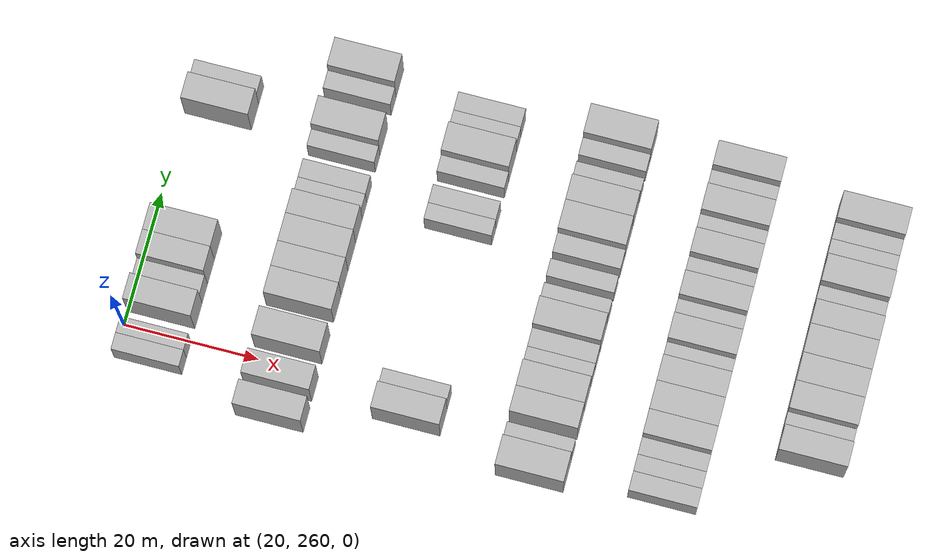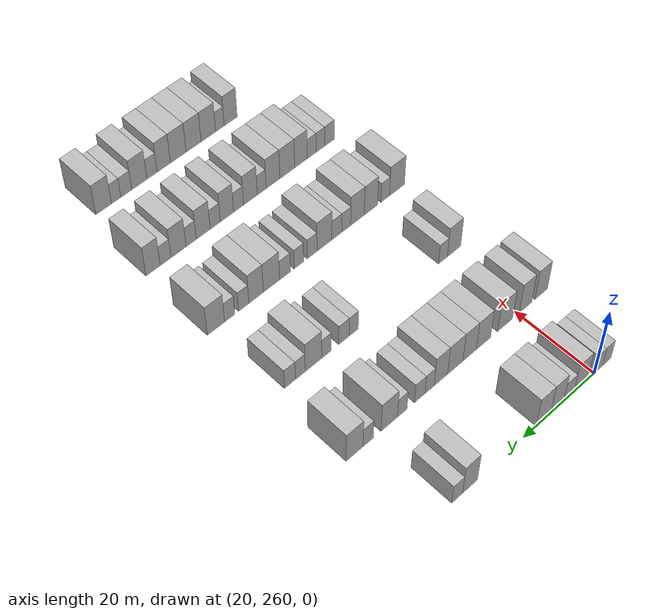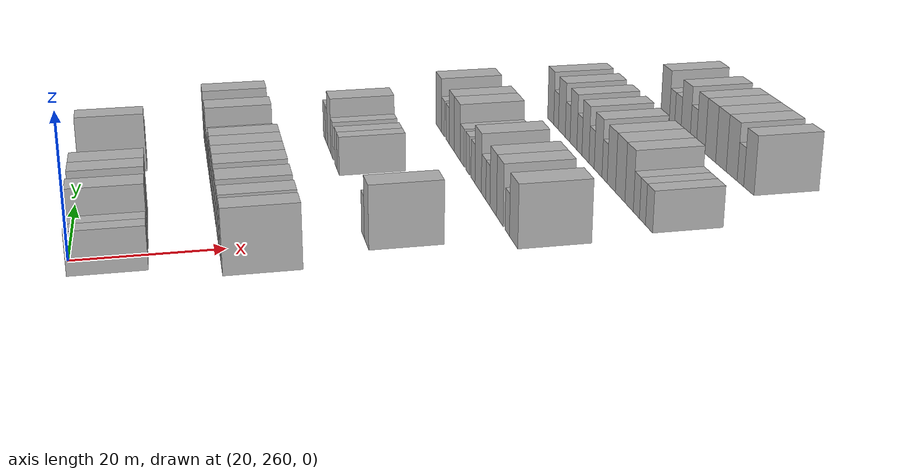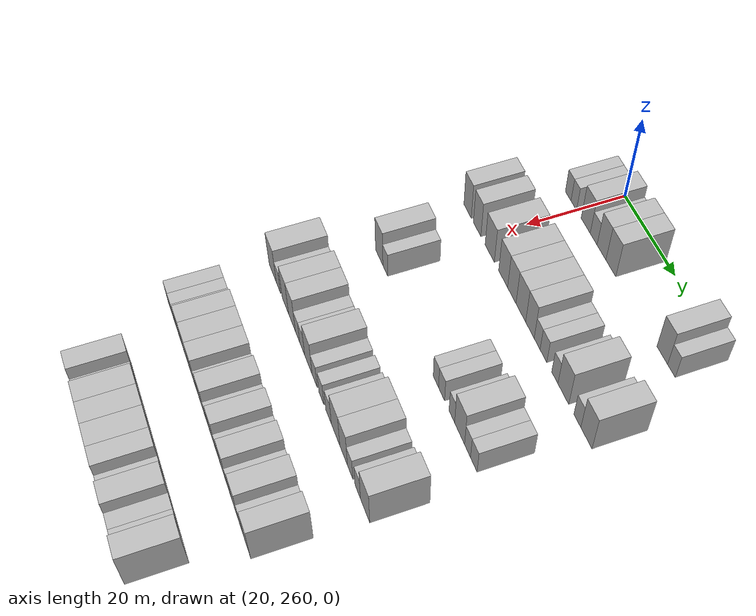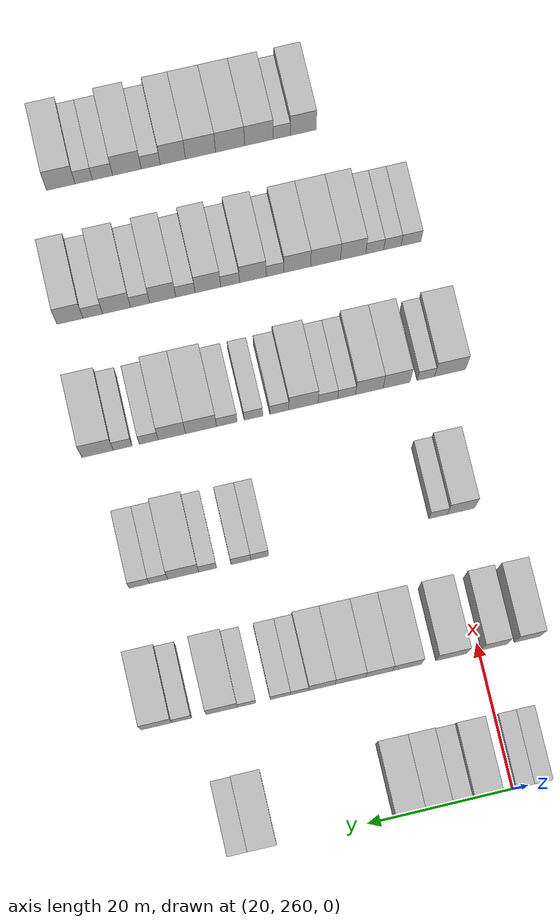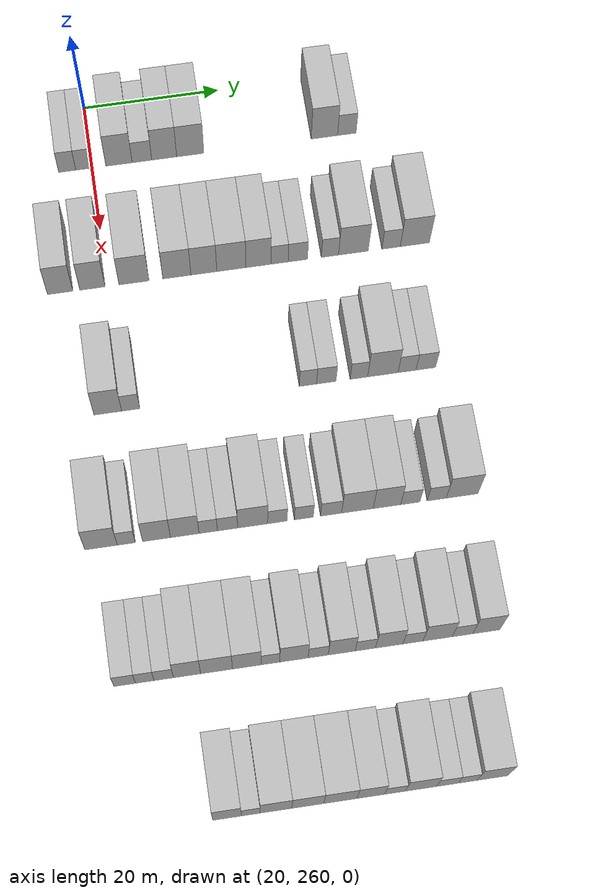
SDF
<sdf version="1.6">
 <world name="default">
  <model name="building_160">
   <static>1</static>
   <pose>25.0000 256.3581 0 0.000000 0.000000 0.000000</pose>
   <link name="link">
    <pose>0 0 3.00 0 0 0</pose>
    <collision name="collision"><geometry><box><size>10.0000 2.5016 6.0000</size></box></geometry></collision>
    <visual name="visual">
     <cast_shadows>0</cast_shadows>
     <geometry><box><size>10.0000 2.5016 6.0000</size></box></geometry>
     <material>
      <script>
       <uri>model://HANNAS_wall/materials/scripts</uri>
       <uri>model://HANNAS_wall/materials/textures</uri>
       <name>vrc/HANNAS_wall</name>
      </script>
     </material>
    </visual>
   </link>
  </model>
  <model name="building_161">
   <static>1</static>
   <pose>25.0000 258.8253 0 0.000000 0.000000 0.000000</pose>
   <link name="link">
    <pose>0 0 3.00 0 0 0</pose>
    <collision name="collision"><geometry><box><size>10.0000 2.4328 6.0000</size></box></geometry></collision>
    <visual name="visual">
     <cast_shadows>0</cast_shadows>
     <geometry><box><size>10.0000 2.4328 6.0000</size></box></geometry>
     <material>
      <script>
       <uri>model://HANNAS_wall/materials/scripts</uri>
       <uri>model://HANNAS_wall/materials/textures</uri>
       <name>vrc/HANNAS_wall</name>
      </script>
     </material>
    </visual>
   </link>
  </model>
  <model name="building_162">
   <static>1</static>
   <pose>25.0000 263.9717 0 0.000000 0.000000 0.000000</pose>
   <link name="link">
    <pose>0 0 4.50 0 0 0</pose>
    <collision name="collision"><geometry><box><size>10.0000 3.8600 9.0000</size></box></geometry></collision>
    <visual name="visual">
     <cast_shadows>0</cast_shadows>
     <geometry><box><size>10.0000 3.8600 9.0000</size></box></geometry>
     <material>
      <script>
       <uri>model://HANNAS_wall/materials/scripts</uri>
       <uri>model://HANNAS_wall/materials/textures</uri>
       <name>vrc/HANNAS_wall</name>
      </script>
     </material>
    </visual>
   </link>
  </model>
  <model name="building_163">
   <static>1</static>
   <pose>25.0000 267.3473 0 0.000000 0.000000 0.000000</pose>
   <link name="link">
    <pose>0 0 3.00 0 0 0</pose>
    <collision name="collision"><geometry><box><size>10.0000 2.8911 6.0000</size></box></geometry></collision>
    <visual name="visual">
     <cast_shadows>0</cast_shadows>
     <geometry><box><size>10.0000 2.8911 6.0000</size></box></geometry>
     <material>
      <script>
       <uri>model://HANNAS_wall/materials/scripts</uri>
       <uri>model://HANNAS_wall/materials/textures</uri>
       <name>vrc/HANNAS_wall</name>
      </script>
     </material>
    </visual>
   </link>
  </model>
  <model name="building_164">
   <static>1</static>
   <pose>25.0000 270.6294 0 0.000000 0.000000 0.000000</pose>
   <link name="link">
    <pose>0 0 4.50 0 0 0</pose>
    <collision name="collision"><geometry><box><size>10.0000 3.6730 9.0000</size></box></geometry></collision>
    <visual name="visual">
     <cast_shadows>0</cast_shadows>
     <geometry><box><size>10.0000 3.6730 9.0000</size></box></geometry>
     <material>
      <script>
       <uri>model://HANNAS_wall/materials/scripts</uri>
       <uri>model://HANNAS_wall/materials/textures</uri>
       <name>vrc/HANNAS_wall</name>
      </script>
     </material>
    </visual>
   </link>
  </model>
  <model name="building_165">
   <static>1</static>
   <pose>25.0000 274.4735 0 0.000000 0.000000 0.000000</pose>
   <link name="link">
    <pose>0 0 4.50 0 0 0</pose>
    <collision name="collision"><geometry><box><size>10.0000 4.0152 9.0000</size></box></geometry></collision>
    <visual name="visual">
     <cast_shadows>0</cast_shadows>
     <geometry><box><size>10.0000 4.0152 9.0000</size></box></geometry>
     <material>
      <script>
       <uri>model://HANNAS_wall/materials/scripts</uri>
       <uri>model://HANNAS_wall/materials/textures</uri>
       <name>vrc/HANNAS_wall</name>
      </script>
     </material>
    </visual>
   </link>
  </model>
  <model name="building_166">
   <static>1</static>
   <pose>25.0000 294.3667 0 0.000000 0.000000 0.000000</pose>
   <link name="link">
    <pose>0 0 4.50 0 0 0</pose>
    <collision name="collision"><geometry><box><size>10.0000 3.9238 9.0000</size></box></geometry></collision>
    <visual name="visual">
     <cast_shadows>0</cast_shadows>
     <geometry><box><size>10.0000 3.9238 9.0000</size></box></geometry>
     <material>
      <script>
       <uri>model://HANNAS_wall/materials/scripts</uri>
       <uri>model://HANNAS_wall/materials/textures</uri>
       <name>vrc/HANNAS_wall</name>
      </script>
     </material>
    </visual>
   </link>
  </model>
  <model name="building_167">
   <static>1</static>
   <pose>25.0000 297.7089 0 0.000000 0.000000 0.000000</pose>
   <link name="link">
    <pose>0 0 3.00 0 0 0</pose>
    <collision name="collision"><geometry><box><size>10.0000 2.7605 6.0000</size></box></geometry></collision>
    <visual name="visual">
     <cast_shadows>0</cast_shadows>
     <geometry><box><size>10.0000 2.7605 6.0000</size></box></geometry>
     <material>
      <script>
       <uri>model://HANNAS_wall/materials/scripts</uri>
       <uri>model://HANNAS_wall/materials/textures</uri>
       <name>vrc/HANNAS_wall</name>
      </script>
     </material>
    </visual>
   </link>
  </model>
  <model name="building_325">
   <static>1</static>
   <pose>44.0000 253.2449 0 0.000000 0.000000 0.000000</pose>
   <link name="link">
    <pose>0 0 4.50 0 0 0</pose>
    <collision name="collision"><geometry><box><size>10.0000 3.6334 9.0000</size></box></geometry></collision>
    <visual name="visual">
     <cast_shadows>0</cast_shadows>
     <geometry><box><size>10.0000 3.6334 9.0000</size></box></geometry>
     <material>
      <script>
       <uri>model://HANNAS_wall/materials/scripts</uri>
       <uri>model://HANNAS_wall/materials/textures</uri>
       <name>vrc/HANNAS_wall</name>
      </script>
     </material>
    </visual>
   </link>
  </model>
  <model name="building_326">
   <static>1</static>
   <pose>44.0000 257.8719 0 0.000000 0.000000 0.000000</pose>
   <link name="link">
    <pose>0 0 4.50 0 0 0</pose>
    <collision name="collision"><geometry><box><size>10.0000 3.6205 9.0000</size></box></geometry></collision>
    <visual name="visual">
     <cast_shadows>0</cast_shadows>
     <geometry><box><size>10.0000 3.6205 9.0000</size></box></geometry>
     <material>
      <script>
       <uri>model://HANNAS_wall/materials/scripts</uri>
       <uri>model://HANNAS_wall/materials/textures</uri>
       <name>vrc/HANNAS_wall</name>
      </script>
     </material>
    </visual>
   </link>
  </model>
  <model name="building_327">
   <static>1</static>
   <pose>44.0000 263.8286 0 0.000000 0.000000 0.000000</pose>
   <link name="link">
    <pose>0 0 4.50 0 0 0</pose>
    <collision name="collision"><geometry><box><size>10.0000 4.2930 9.0000</size></box></geometry></collision>
    <visual name="visual">
     <cast_shadows>0</cast_shadows>
     <geometry><box><size>10.0000 4.2930 9.0000</size></box></geometry>
     <material>
      <script>
       <uri>model://HANNAS_wall/materials/scripts</uri>
       <uri>model://HANNAS_wall/materials/textures</uri>
       <name>vrc/HANNAS_wall</name>
      </script>
     </material>
    </visual>
   </link>
  </model>
  <model name="building_328">
   <static>1</static>
   <pose>44.0000 269.9940 0 0.000000 0.000000 0.000000</pose>
   <link name="link">
    <pose>0 0 4.50 0 0 0</pose>
    <collision name="collision"><geometry><box><size>10.0000 4.0378 9.0000</size></box></geometry></collision>
    <visual name="visual">
     <cast_shadows>0</cast_shadows>
     <geometry><box><size>10.0000 4.0378 9.0000</size></box></geometry>
     <material>
      <script>
       <uri>model://HANNAS_wall/materials/scripts</uri>
       <uri>model://HANNAS_wall/materials/textures</uri>
       <name>vrc/HANNAS_wall</name>
      </script>
     </material>
    </visual>
   </link>
  </model>
  <model name="building_329">
   <static>1</static>
   <pose>44.0000 273.8795 0 0.000000 0.000000 0.000000</pose>
   <link name="link">
    <pose>0 0 4.50 0 0 0</pose>
    <collision name="collision"><geometry><box><size>10.0000 3.7334 9.0000</size></box></geometry></collision>
    <visual name="visual">
     <cast_shadows>0</cast_shadows>
     <geometry><box><size>10.0000 3.7334 9.0000</size></box></geometry>
     <material>
      <script>
       <uri>model://HANNAS_wall/materials/scripts</uri>
       <uri>model://HANNAS_wall/materials/textures</uri>
       <name>vrc/HANNAS_wall</name>
      </script>
     </material>
    </visual>
   </link>
  </model>
  <model name="building_330">
   <static>1</static>
   <pose>44.0000 277.8485 0 0.000000 0.000000 0.000000</pose>
   <link name="link">
    <pose>0 0 4.50 0 0 0</pose>
    <collision name="collision"><geometry><box><size>10.0000 4.2046 9.0000</size></box></geometry></collision>
    <visual name="visual">
     <cast_shadows>0</cast_shadows>
     <geometry><box><size>10.0000 4.2046 9.0000</size></box></geometry>
     <material>
      <script>
       <uri>model://HANNAS_wall/materials/scripts</uri>
       <uri>model://HANNAS_wall/materials/textures</uri>
       <name>vrc/HANNAS_wall</name>
      </script>
     </material>
    </visual>
   </link>
  </model>
  <model name="building_331">
   <static>1</static>
   <pose>44.0000 281.7733 0 0.000000 0.000000 0.000000</pose>
   <link name="link">
    <pose>0 0 4.50 0 0 0</pose>
    <collision name="collision"><geometry><box><size>10.0000 3.6450 9.0000</size></box></geometry></collision>
    <visual name="visual">
     <cast_shadows>0</cast_shadows>
     <geometry><box><size>10.0000 3.6450 9.0000</size></box></geometry>
     <material>
      <script>
       <uri>model://HANNAS_wall/materials/scripts</uri>
       <uri>model://HANNAS_wall/materials/textures</uri>
       <name>vrc/HANNAS_wall</name>
      </script>
     </material>
    </visual>
   </link>
  </model>
  <model name="building_332">
   <static>1</static>
   <pose>44.0000 284.8327 0 0.000000 0.000000 0.000000</pose>
   <link name="link">
    <pose>0 0 3.00 0 0 0</pose>
    <collision name="collision"><geometry><box><size>10.0000 2.4738 6.0000</size></box></geometry></collision>
    <visual name="visual">
     <cast_shadows>0</cast_shadows>
     <geometry><box><size>10.0000 2.4738 6.0000</size></box></geometry>
     <material>
      <script>
       <uri>model://HANNAS_wall/materials/scripts</uri>
       <uri>model://HANNAS_wall/materials/textures</uri>
       <name>vrc/HANNAS_wall</name>
      </script>
     </material>
    </visual>
   </link>
  </model>
  <model name="building_333">
   <static>1</static>
   <pose>44.0000 287.4721 0 0.000000 0.000000 0.000000</pose>
   <link name="link">
    <pose>0 0 3.00 0 0 0</pose>
    <collision name="collision"><geometry><box><size>10.0000 2.8050 6.0000</size></box></geometry></collision>
    <visual name="visual">
     <cast_shadows>0</cast_shadows>
     <geometry><box><size>10.0000 2.8050 6.0000</size></box></geometry>
     <material>
      <script>
       <uri>model://HANNAS_wall/materials/scripts</uri>
       <uri>model://HANNAS_wall/materials/textures</uri>
       <name>vrc/HANNAS_wall</name>
      </script>
     </material>
    </visual>
   </link>
  </model>
  <model name="building_334">
   <static>1</static>
   <pose>44.0000 292.1279 0 0.000000 0.000000 0.000000</pose>
   <link name="link">
    <pose>0 0 3.00 0 0 0</pose>
    <collision name="collision"><geometry><box><size>10.0000 2.5068 6.0000</size></box></geometry></collision>
    <visual name="visual">
     <cast_shadows>0</cast_shadows>
     <geometry><box><size>10.0000 2.5068 6.0000</size></box></geometry>
     <material>
      <script>
       <uri>model://HANNAS_wall/materials/scripts</uri>
       <uri>model://HANNAS_wall/materials/textures</uri>
       <name>vrc/HANNAS_wall</name>
      </script>
     </material>
    </visual>
   </link>
  </model>
  <model name="building_335">
   <static>1</static>
   <pose>44.0000 295.5361 0 0.000000 0.000000 0.000000</pose>
   <link name="link">
    <pose>0 0 4.50 0 0 0</pose>
    <collision name="collision"><geometry><box><size>10.0000 4.3096 9.0000</size></box></geometry></collision>
    <visual name="visual">
     <cast_shadows>0</cast_shadows>
     <geometry><box><size>10.0000 4.3096 9.0000</size></box></geometry>
     <material>
      <script>
       <uri>model://HANNAS_wall/materials/scripts</uri>
       <uri>model://HANNAS_wall/materials/textures</uri>
       <name>vrc/HANNAS_wall</name>
      </script>
     </material>
    </visual>
   </link>
  </model>
  <model name="building_336">
   <static>1</static>
   <pose>44.0000 301.0274 0 0.000000 0.000000 0.000000</pose>
   <link name="link">
    <pose>0 0 3.00 0 0 0</pose>
    <collision name="collision"><geometry><box><size>10.0000 2.6730 6.0000</size></box></geometry></collision>
    <visual name="visual">
     <cast_shadows>0</cast_shadows>
     <geometry><box><size>10.0000 2.6730 6.0000</size></box></geometry>
     <material>
      <script>
       <uri>model://HANNAS_wall/materials/scripts</uri>
       <uri>model://HANNAS_wall/materials/textures</uri>
       <name>vrc/HANNAS_wall</name>
      </script>
     </material>
    </visual>
   </link>
  </model>
  <model name="building_337">
   <static>1</static>
   <pose>44.0000 304.4922 0 0.000000 0.000000 0.000000</pose>
   <link name="link">
    <pose>0 0 4.50 0 0 0</pose>
    <collision name="collision"><geometry><box><size>10.0000 4.2565 9.0000</size></box></geometry></collision>
    <visual name="visual">
     <cast_shadows>0</cast_shadows>
     <geometry><box><size>10.0000 4.2565 9.0000</size></box></geometry>
     <material>
      <script>
       <uri>model://HANNAS_wall/materials/scripts</uri>
       <uri>model://HANNAS_wall/materials/textures</uri>
       <name>vrc/HANNAS_wall</name>
      </script>
     </material>
    </visual>
   </link>
  </model>
  <model name="building_499">
   <static>1</static>
   <pose>63.0000 257.8078 0 0.000000 0.000000 0.000000</pose>
   <link name="link">
    <pose>0 0 4.50 0 0 0</pose>
    <collision name="collision"><geometry><box><size>10.0000 3.8708 9.0000</size></box></geometry></collision>
    <visual name="visual">
     <cast_shadows>0</cast_shadows>
     <geometry><box><size>10.0000 3.8708 9.0000</size></box></geometry>
     <material>
      <script>
       <uri>model://HANNAS_wall/materials/scripts</uri>
       <uri>model://HANNAS_wall/materials/textures</uri>
       <name>vrc/HANNAS_wall</name>
      </script>
     </material>
    </visual>
   </link>
  </model>
  <model name="building_500">
   <static>1</static>
   <pose>63.0000 261.0127 0 0.000000 0.000000 0.000000</pose>
   <link name="link">
    <pose>0 0 3.00 0 0 0</pose>
    <collision name="collision"><geometry><box><size>10.0000 2.5390 6.0000</size></box></geometry></collision>
    <visual name="visual">
     <cast_shadows>0</cast_shadows>
     <geometry><box><size>10.0000 2.5390 6.0000</size></box></geometry>
     <material>
      <script>
       <uri>model://HANNAS_wall/materials/scripts</uri>
       <uri>model://HANNAS_wall/materials/textures</uri>
       <name>vrc/HANNAS_wall</name>
      </script>
     </material>
    </visual>
   </link>
  </model>
  <model name="building_501">
   <static>1</static>
   <pose>63.0000 285.9503 0 0.000000 0.000000 0.000000</pose>
   <link name="link">
    <pose>0 0 3.00 0 0 0</pose>
    <collision name="collision"><geometry><box><size>10.0000 2.4454 6.0000</size></box></geometry></collision>
    <visual name="visual">
     <cast_shadows>0</cast_shadows>
     <geometry><box><size>10.0000 2.4454 6.0000</size></box></geometry>
     <material>
      <script>
       <uri>model://HANNAS_wall/materials/scripts</uri>
       <uri>model://HANNAS_wall/materials/textures</uri>
       <name>vrc/HANNAS_wall</name>
      </script>
     </material>
    </visual>
   </link>
  </model>
  <model name="building_502">
   <static>1</static>
   <pose>63.0000 288.5476 0 0.000000 0.000000 0.000000</pose>
   <link name="link">
    <pose>0 0 3.00 0 0 0</pose>
    <collision name="collision"><geometry><box><size>10.0000 2.7493 6.0000</size></box></geometry></collision>
    <visual name="visual">
     <cast_shadows>0</cast_shadows>
     <geometry><box><size>10.0000 2.7493 6.0000</size></box></geometry>
     <material>
      <script>
       <uri>model://HANNAS_wall/materials/scripts</uri>
       <uri>model://HANNAS_wall/materials/textures</uri>
       <name>vrc/HANNAS_wall</name>
      </script>
     </material>
    </visual>
   </link>
  </model>
  <model name="building_503">
   <static>1</static>
   <pose>63.0000 293.1632 0 0.000000 0.000000 0.000000</pose>
   <link name="link">
    <pose>0 0 3.00 0 0 0</pose>
    <collision name="collision"><geometry><box><size>10.0000 2.4818 6.0000</size></box></geometry></collision>
    <visual name="visual">
     <cast_shadows>0</cast_shadows>
     <geometry><box><size>10.0000 2.4818 6.0000</size></box></geometry>
     <material>
      <script>
       <uri>model://HANNAS_wall/materials/scripts</uri>
       <uri>model://HANNAS_wall/materials/textures</uri>
       <name>vrc/HANNAS_wall</name>
      </script>
     </material>
    </visual>
   </link>
  </model>
  <model name="building_504">
   <static>1</static>
   <pose>63.0000 296.5679 0 0.000000 0.000000 0.000000</pose>
   <link name="link">
    <pose>0 0 4.50 0 0 0</pose>
    <collision name="collision"><geometry><box><size>10.0000 4.3277 9.0000</size></box></geometry></collision>
    <visual name="visual">
     <cast_shadows>0</cast_shadows>
     <geometry><box><size>10.0000 4.3277 9.0000</size></box></geometry>
     <material>
      <script>
       <uri>model://HANNAS_wall/materials/scripts</uri>
       <uri>model://HANNAS_wall/materials/textures</uri>
       <name>vrc/HANNAS_wall</name>
      </script>
     </material>
    </visual>
   </link>
  </model>
  <model name="building_505">
   <static>1</static>
   <pose>63.0000 300.0081 0 0.000000 0.000000 0.000000</pose>
   <link name="link">
    <pose>0 0 3.00 0 0 0</pose>
    <collision name="collision"><geometry><box><size>10.0000 2.5527 6.0000</size></box></geometry></collision>
    <visual name="visual">
     <cast_shadows>0</cast_shadows>
     <geometry><box><size>10.0000 2.5527 6.0000</size></box></geometry>
     <material>
      <script>
       <uri>model://HANNAS_wall/materials/scripts</uri>
       <uri>model://HANNAS_wall/materials/textures</uri>
       <name>vrc/HANNAS_wall</name>
      </script>
     </material>
    </visual>
   </link>
  </model>
  <model name="building_506">
   <static>1</static>
   <pose>63.0000 302.6751 0 0.000000 0.000000 0.000000</pose>
   <link name="link">
    <pose>0 0 3.00 0 0 0</pose>
    <collision name="collision"><geometry><box><size>10.0000 2.7813 6.0000</size></box></geometry></collision>
    <visual name="visual">
     <cast_shadows>0</cast_shadows>
     <geometry><box><size>10.0000 2.7813 6.0000</size></box></geometry>
     <material>
      <script>
       <uri>model://HANNAS_wall/materials/scripts</uri>
       <uri>model://HANNAS_wall/materials/textures</uri>
       <name>vrc/HANNAS_wall</name>
      </script>
     </material>
    </visual>
   </link>
  </model>
  <model name="building_668">
   <static>1</static>
   <pose>82.0000 254.6436 0 0.000000 0.000000 0.000000</pose>
   <link name="link">
    <pose>0 0 4.50 0 0 0</pose>
    <collision name="collision"><geometry><box><size>10.0000 4.4127 9.0000</size></box></geometry></collision>
    <visual name="visual">
     <cast_shadows>0</cast_shadows>
     <geometry><box><size>10.0000 4.4127 9.0000</size></box></geometry>
     <material>
      <script>
       <uri>model://HANNAS_wall/materials/scripts</uri>
       <uri>model://HANNAS_wall/materials/textures</uri>
       <name>vrc/HANNAS_wall</name>
      </script>
     </material>
    </visual>
   </link>
  </model>
  <model name="building_669">
   <static>1</static>
   <pose>82.0000 258.0826 0 0.000000 0.000000 0.000000</pose>
   <link name="link">
    <pose>0 0 3.00 0 0 0</pose>
    <collision name="collision"><geometry><box><size>10.0000 2.4653 6.0000</size></box></geometry></collision>
    <visual name="visual">
     <cast_shadows>0</cast_shadows>
     <geometry><box><size>10.0000 2.4653 6.0000</size></box></geometry>
     <material>
      <script>
       <uri>model://HANNAS_wall/materials/scripts</uri>
       <uri>model://HANNAS_wall/materials/textures</uri>
       <name>vrc/HANNAS_wall</name>
      </script>
     </material>
    </visual>
   </link>
  </model>
  <model name="building_670">
   <static>1</static>
   <pose>82.0000 262.2185 0 0.000000 0.000000 0.000000</pose>
   <link name="link">
    <pose>0 0 4.50 0 0 0</pose>
    <collision name="collision"><geometry><box><size>10.0000 3.8065 9.0000</size></box></geometry></collision>
    <visual name="visual">
     <cast_shadows>0</cast_shadows>
     <geometry><box><size>10.0000 3.8065 9.0000</size></box></geometry>
     <material>
      <script>
       <uri>model://HANNAS_wall/materials/scripts</uri>
       <uri>model://HANNAS_wall/materials/textures</uri>
       <name>vrc/HANNAS_wall</name>
      </script>
     </material>
    </visual>
   </link>
  </model>
  <model name="building_671">
   <static>1</static>
   <pose>82.0000 266.0718 0 0.000000 0.000000 0.000000</pose>
   <link name="link">
    <pose>0 0 4.50 0 0 0</pose>
    <collision name="collision"><geometry><box><size>10.0000 3.9001 9.0000</size></box></geometry></collision>
    <visual name="visual">
     <cast_shadows>0</cast_shadows>
     <geometry><box><size>10.0000 3.9001 9.0000</size></box></geometry>
     <material>
      <script>
       <uri>model://HANNAS_wall/materials/scripts</uri>
       <uri>model://HANNAS_wall/materials/textures</uri>
       <name>vrc/HANNAS_wall</name>
      </script>
     </material>
    </visual>
   </link>
  </model>
  <model name="building_672">
   <static>1</static>
   <pose>82.0000 269.2745 0 0.000000 0.000000 0.000000</pose>
   <link name="link">
    <pose>0 0 3.00 0 0 0</pose>
    <collision name="collision"><geometry><box><size>10.0000 2.5052 6.0000</size></box></geometry></collision>
    <visual name="visual">
     <cast_shadows>0</cast_shadows>
     <geometry><box><size>10.0000 2.5052 6.0000</size></box></geometry>
     <material>
      <script>
       <uri>model://HANNAS_wall/materials/scripts</uri>
       <uri>model://HANNAS_wall/materials/textures</uri>
       <name>vrc/HANNAS_wall</name>
      </script>
     </material>
    </visual>
   </link>
  </model>
  <model name="building_673">
   <static>1</static>
   <pose>82.0000 271.9140 0 0.000000 0.000000 0.000000</pose>
   <link name="link">
    <pose>0 0 3.00 0 0 0</pose>
    <collision name="collision"><geometry><box><size>10.0000 2.7739 6.0000</size></box></geometry></collision>
    <visual name="visual">
     <cast_shadows>0</cast_shadows>
     <geometry><box><size>10.0000 2.7739 6.0000</size></box></geometry>
     <material>
      <script>
       <uri>model://HANNAS_wall/materials/scripts</uri>
       <uri>model://HANNAS_wall/materials/textures</uri>
       <name>vrc/HANNAS_wall</name>
      </script>
     </material>
    </visual>
   </link>
  </model>
  <model name="building_674">
   <static>1</static>
   <pose>82.0000 275.3615 0 0.000000 0.000000 0.000000</pose>
   <link name="link">
    <pose>0 0 4.50 0 0 0</pose>
    <collision name="collision"><geometry><box><size>10.0000 4.1211 9.0000</size></box></geometry></collision>
    <visual name="visual">
     <cast_shadows>0</cast_shadows>
     <geometry><box><size>10.0000 4.1211 9.0000</size></box></geometry>
     <material>
      <script>
       <uri>model://HANNAS_wall/materials/scripts</uri>
       <uri>model://HANNAS_wall/materials/textures</uri>
       <name>vrc/HANNAS_wall</name>
      </script>
     </material>
    </visual>
   </link>
  </model>
  <model name="building_675">
   <static>1</static>
   <pose>82.0000 278.7590 0 0.000000 0.000000 0.000000</pose>
   <link name="link">
    <pose>0 0 3.00 0 0 0</pose>
    <collision name="collision"><geometry><box><size>10.0000 2.6738 6.0000</size></box></geometry></collision>
    <visual name="visual">
     <cast_shadows>0</cast_shadows>
     <geometry><box><size>10.0000 2.6738 6.0000</size></box></geometry>
     <material>
      <script>
       <uri>model://HANNAS_wall/materials/scripts</uri>
       <uri>model://HANNAS_wall/materials/textures</uri>
       <name>vrc/HANNAS_wall</name>
      </script>
     </material>
    </visual>
   </link>
  </model>
  <model name="building_676">
   <static>1</static>
   <pose>82.0000 282.3992 0 0.000000 0.000000 0.000000</pose>
   <link name="link">
    <pose>0 0 3.00 0 0 0</pose>
    <collision name="collision"><geometry><box><size>10.0000 2.6067 6.0000</size></box></geometry></collision>
    <visual name="visual">
     <cast_shadows>0</cast_shadows>
     <geometry><box><size>10.0000 2.6067 6.0000</size></box></geometry>
     <material>
      <script>
       <uri>model://HANNAS_wall/materials/scripts</uri>
       <uri>model://HANNAS_wall/materials/textures</uri>
       <name>vrc/HANNAS_wall</name>
      </script>
     </material>
    </visual>
   </link>
  </model>
  <model name="building_677">
   <static>1</static>
   <pose>82.0000 286.1535 0 0.000000 0.000000 0.000000</pose>
   <link name="link">
    <pose>0 0 3.00 0 0 0</pose>
    <collision name="collision"><geometry><box><size>10.0000 2.9019 6.0000</size></box></geometry></collision>
    <visual name="visual">
     <cast_shadows>0</cast_shadows>
     <geometry><box><size>10.0000 2.9019 6.0000</size></box></geometry>
     <material>
      <script>
       <uri>model://HANNAS_wall/materials/scripts</uri>
       <uri>model://HANNAS_wall/materials/textures</uri>
       <name>vrc/HANNAS_wall</name>
      </script>
     </material>
    </visual>
   </link>
  </model>
  <model name="building_678">
   <static>1</static>
   <pose>82.0000 289.7809 0 0.000000 0.000000 0.000000</pose>
   <link name="link">
    <pose>0 0 4.50 0 0 0</pose>
    <collision name="collision"><geometry><box><size>10.0000 4.3531 9.0000</size></box></geometry></collision>
    <visual name="visual">
     <cast_shadows>0</cast_shadows>
     <geometry><box><size>10.0000 4.3531 9.0000</size></box></geometry>
     <material>
      <script>
       <uri>model://HANNAS_wall/materials/scripts</uri>
       <uri>model://HANNAS_wall/materials/textures</uri>
       <name>vrc/HANNAS_wall</name>
      </script>
     </material>
    </visual>
   </link>
  </model>
  <model name="building_679">
   <static>1</static>
   <pose>82.0000 293.8677 0 0.000000 0.000000 0.000000</pose>
   <link name="link">
    <pose>0 0 4.50 0 0 0</pose>
    <collision name="collision"><geometry><box><size>10.0000 3.8204 9.0000</size></box></geometry></collision>
    <visual name="visual">
     <cast_shadows>0</cast_shadows>
     <geometry><box><size>10.0000 3.8204 9.0000</size></box></geometry>
     <material>
      <script>
       <uri>model://HANNAS_wall/materials/scripts</uri>
       <uri>model://HANNAS_wall/materials/textures</uri>
       <name>vrc/HANNAS_wall</name>
      </script>
     </material>
    </visual>
   </link>
  </model>
  <model name="building_680">
   <static>1</static>
   <pose>82.0000 297.1081 0 0.000000 0.000000 0.000000</pose>
   <link name="link">
    <pose>0 0 3.00 0 0 0</pose>
    <collision name="collision"><geometry><box><size>10.0000 2.6603 6.0000</size></box></geometry></collision>
    <visual name="visual">
     <cast_shadows>0</cast_shadows>
     <geometry><box><size>10.0000 2.6603 6.0000</size></box></geometry>
     <material>
      <script>
       <uri>model://HANNAS_wall/materials/scripts</uri>
       <uri>model://HANNAS_wall/materials/textures</uri>
       <name>vrc/HANNAS_wall</name>
      </script>
     </material>
    </visual>
   </link>
  </model>
  <model name="building_681">
   <static>1</static>
   <pose>82.0000 300.7592 0 0.000000 0.000000 0.000000</pose>
   <link name="link">
    <pose>0 0 3.00 0 0 0</pose>
    <collision name="collision"><geometry><box><size>10.0000 2.6420 6.0000</size></box></geometry></collision>
    <visual name="visual">
     <cast_shadows>0</cast_shadows>
     <geometry><box><size>10.0000 2.6420 6.0000</size></box></geometry>
     <material>
      <script>
       <uri>model://HANNAS_wall/materials/scripts</uri>
       <uri>model://HANNAS_wall/materials/textures</uri>
       <name>vrc/HANNAS_wall</name>
      </script>
     </material>
    </visual>
   </link>
  </model>
  <model name="building_682">
   <static>1</static>
   <pose>82.0000 304.2880 0 0.000000 0.000000 0.000000</pose>
   <link name="link">
    <pose>0 0 4.50 0 0 0</pose>
    <collision name="collision"><geometry><box><size>10.0000 4.4157 9.0000</size></box></geometry></collision>
    <visual name="visual">
     <cast_shadows>0</cast_shadows>
     <geometry><box><size>10.0000 4.4157 9.0000</size></box></geometry>
     <material>
      <script>
       <uri>model://HANNAS_wall/materials/scripts</uri>
       <uri>model://HANNAS_wall/materials/textures</uri>
       <name>vrc/HANNAS_wall</name>
      </script>
     </material>
    </visual>
   </link>
  </model>
  <model name="building_852">
   <static>1</static>
   <pose>101.0000 255.5591 0 0.000000 0.000000 0.000000</pose>
   <link name="link">
    <pose>0 0 3.00 0 0 0</pose>
    <collision name="collision"><geometry><box><size>10.0000 2.8515 6.0000</size></box></geometry></collision>
    <visual name="visual">
     <cast_shadows>0</cast_shadows>
     <geometry><box><size>10.0000 2.8515 6.0000</size></box></geometry>
     <material>
      <script>
       <uri>model://HANNAS_wall/materials/scripts</uri>
       <uri>model://HANNAS_wall/materials/textures</uri>
       <name>vrc/HANNAS_wall</name>
      </script>
     </material>
    </visual>
   </link>
  </model>
  <model name="building_853">
   <static>1</static>
   <pose>101.0000 258.2224 0 0.000000 0.000000 0.000000</pose>
   <link name="link">
    <pose>0 0 3.00 0 0 0</pose>
    <collision name="collision"><geometry><box><size>10.0000 2.4751 6.0000</size></box></geometry></collision>
    <visual name="visual">
     <cast_shadows>0</cast_shadows>
     <geometry><box><size>10.0000 2.4751 6.0000</size></box></geometry>
     <material>
      <script>
       <uri>model://HANNAS_wall/materials/scripts</uri>
       <uri>model://HANNAS_wall/materials/textures</uri>
       <name>vrc/HANNAS_wall</name>
      </script>
     </material>
    </visual>
   </link>
  </model>
  <model name="building_854">
   <static>1</static>
   <pose>101.0000 260.7428 0 0.000000 0.000000 0.000000</pose>
   <link name="link">
    <pose>0 0 3.00 0 0 0</pose>
    <collision name="collision"><geometry><box><size>10.0000 2.5656 6.0000</size></box></geometry></collision>
    <visual name="visual">
     <cast_shadows>0</cast_shadows>
     <geometry><box><size>10.0000 2.5656 6.0000</size></box></geometry>
     <material>
      <script>
       <uri>model://HANNAS_wall/materials/scripts</uri>
       <uri>model://HANNAS_wall/materials/textures</uri>
       <name>vrc/HANNAS_wall</name>
      </script>
     </material>
    </visual>
   </link>
  </model>
  <model name="building_855">
   <static>1</static>
   <pose>101.0000 263.8365 0 0.000000 0.000000 0.000000</pose>
   <link name="link">
    <pose>0 0 4.50 0 0 0</pose>
    <collision name="collision"><geometry><box><size>10.0000 3.6219 9.0000</size></box></geometry></collision>
    <visual name="visual">
     <cast_shadows>0</cast_shadows>
     <geometry><box><size>10.0000 3.6219 9.0000</size></box></geometry>
     <material>
      <script>
       <uri>model://HANNAS_wall/materials/scripts</uri>
       <uri>model://HANNAS_wall/materials/textures</uri>
       <name>vrc/HANNAS_wall</name>
      </script>
     </material>
    </visual>
   </link>
  </model>
  <model name="building_856">
   <static>1</static>
   <pose>101.0000 267.7625 0 0.000000 0.000000 0.000000</pose>
   <link name="link">
    <pose>0 0 4.50 0 0 0</pose>
    <collision name="collision"><geometry><box><size>10.0000 4.2302 9.0000</size></box></geometry></collision>
    <visual name="visual">
     <cast_shadows>0</cast_shadows>
     <geometry><box><size>10.0000 4.2302 9.0000</size></box></geometry>
     <material>
      <script>
       <uri>model://HANNAS_wall/materials/scripts</uri>
       <uri>model://HANNAS_wall/materials/textures</uri>
       <name>vrc/HANNAS_wall</name>
      </script>
     </material>
    </visual>
   </link>
  </model>
  <model name="building_857">
   <static>1</static>
   <pose>101.0000 271.7949 0 0.000000 0.000000 0.000000</pose>
   <link name="link">
    <pose>0 0 4.50 0 0 0</pose>
    <collision name="collision"><geometry><box><size>10.0000 3.8346 9.0000</size></box></geometry></collision>
    <visual name="visual">
     <cast_shadows>0</cast_shadows>
     <geometry><box><size>10.0000 3.8346 9.0000</size></box></geometry>
     <material>
      <script>
       <uri>model://HANNAS_wall/materials/scripts</uri>
       <uri>model://HANNAS_wall/materials/textures</uri>
       <name>vrc/HANNAS_wall</name>
      </script>
     </material>
    </visual>
   </link>
  </model>
  <model name="building_858">
   <static>1</static>
   <pose>101.0000 274.9523 0 0.000000 0.000000 0.000000</pose>
   <link name="link">
    <pose>0 0 3.00 0 0 0</pose>
    <collision name="collision"><geometry><box><size>10.0000 2.4802 6.0000</size></box></geometry></collision>
    <visual name="visual">
     <cast_shadows>0</cast_shadows>
     <geometry><box><size>10.0000 2.4802 6.0000</size></box></geometry>
     <material>
      <script>
       <uri>model://HANNAS_wall/materials/scripts</uri>
       <uri>model://HANNAS_wall/materials/textures</uri>
       <name>vrc/HANNAS_wall</name>
      </script>
     </material>
    </visual>
   </link>
  </model>
  <model name="building_859">
   <static>1</static>
   <pose>101.0000 278.0905 0 0.000000 0.000000 0.000000</pose>
   <link name="link">
    <pose>0 0 4.50 0 0 0</pose>
    <collision name="collision"><geometry><box><size>10.0000 3.7962 9.0000</size></box></geometry></collision>
    <visual name="visual">
     <cast_shadows>0</cast_shadows>
     <geometry><box><size>10.0000 3.7962 9.0000</size></box></geometry>
     <material>
      <script>
       <uri>model://HANNAS_wall/materials/scripts</uri>
       <uri>model://HANNAS_wall/materials/textures</uri>
       <name>vrc/HANNAS_wall</name>
      </script>
     </material>
    </visual>
   </link>
  </model>
  <model name="building_860">
   <static>1</static>
   <pose>101.0000 281.3335 0 0.000000 0.000000 0.000000</pose>
   <link name="link">
    <pose>0 0 3.00 0 0 0</pose>
    <collision name="collision"><geometry><box><size>10.0000 2.6897 6.0000</size></box></geometry></collision>
    <visual name="visual">
     <cast_shadows>0</cast_shadows>
     <geometry><box><size>10.0000 2.6897 6.0000</size></box></geometry>
     <material>
      <script>
       <uri>model://HANNAS_wall/materials/scripts</uri>
       <uri>model://HANNAS_wall/materials/textures</uri>
       <name>vrc/HANNAS_wall</name>
      </script>
     </material>
    </visual>
   </link>
  </model>
  <model name="building_861">
   <static>1</static>
   <pose>101.0000 284.4938 0 0.000000 0.000000 0.000000</pose>
   <link name="link">
    <pose>0 0 4.50 0 0 0</pose>
    <collision name="collision"><geometry><box><size>10.0000 3.6309 9.0000</size></box></geometry></collision>
    <visual name="visual">
     <cast_shadows>0</cast_shadows>
     <geometry><box><size>10.0000 3.6309 9.0000</size></box></geometry>
     <material>
      <script>
       <uri>model://HANNAS_wall/materials/scripts</uri>
       <uri>model://HANNAS_wall/materials/textures</uri>
       <name>vrc/HANNAS_wall</name>
      </script>
     </material>
    </visual>
   </link>
  </model>
  <model name="building_862">
   <static>1</static>
   <pose>101.0000 287.6731 0 0.000000 0.000000 0.000000</pose>
   <link name="link">
    <pose>0 0 3.00 0 0 0</pose>
    <collision name="collision"><geometry><box><size>10.0000 2.7278 6.0000</size></box></geometry></collision>
    <visual name="visual">
     <cast_shadows>0</cast_shadows>
     <geometry><box><size>10.0000 2.7278 6.0000</size></box></geometry>
     <material>
      <script>
       <uri>model://HANNAS_wall/materials/scripts</uri>
       <uri>model://HANNAS_wall/materials/textures</uri>
       <name>vrc/HANNAS_wall</name>
      </script>
     </material>
    </visual>
   </link>
  </model>
  <model name="building_863">
   <static>1</static>
   <pose>101.0000 290.8940 0 0.000000 0.000000 0.000000</pose>
   <link name="link">
    <pose>0 0 4.50 0 0 0</pose>
    <collision name="collision"><geometry><box><size>10.0000 3.7140 9.0000</size></box></geometry></collision>
    <visual name="visual">
     <cast_shadows>0</cast_shadows>
     <geometry><box><size>10.0000 3.7140 9.0000</size></box></geometry>
     <material>
      <script>
       <uri>model://HANNAS_wall/materials/scripts</uri>
       <uri>model://HANNAS_wall/materials/textures</uri>
       <name>vrc/HANNAS_wall</name>
      </script>
     </material>
    </visual>
   </link>
  </model>
  <model name="building_864">
   <static>1</static>
   <pose>101.0000 294.0993 0 0.000000 0.000000 0.000000</pose>
   <link name="link">
    <pose>0 0 3.00 0 0 0</pose>
    <collision name="collision"><geometry><box><size>10.0000 2.6966 6.0000</size></box></geometry></collision>
    <visual name="visual">
     <cast_shadows>0</cast_shadows>
     <geometry><box><size>10.0000 2.6966 6.0000</size></box></geometry>
     <material>
      <script>
       <uri>model://HANNAS_wall/materials/scripts</uri>
       <uri>model://HANNAS_wall/materials/textures</uri>
       <name>vrc/HANNAS_wall</name>
      </script>
     </material>
    </visual>
   </link>
  </model>
  <model name="building_865">
   <static>1</static>
   <pose>101.0000 297.4254 0 0.000000 0.000000 0.000000</pose>
   <link name="link">
    <pose>0 0 4.50 0 0 0</pose>
    <collision name="collision"><geometry><box><size>10.0000 3.9557 9.0000</size></box></geometry></collision>
    <visual name="visual">
     <cast_shadows>0</cast_shadows>
     <geometry><box><size>10.0000 3.9557 9.0000</size></box></geometry>
     <material>
      <script>
       <uri>model://HANNAS_wall/materials/scripts</uri>
       <uri>model://HANNAS_wall/materials/textures</uri>
       <name>vrc/HANNAS_wall</name>
      </script>
     </material>
    </visual>
   </link>
  </model>
  <model name="building_866">
   <static>1</static>
   <pose>101.0000 300.7900 0 0.000000 0.000000 0.000000</pose>
   <link name="link">
    <pose>0 0 3.00 0 0 0</pose>
    <collision name="collision"><geometry><box><size>10.0000 2.7733 6.0000</size></box></geometry></collision>
    <visual name="visual">
     <cast_shadows>0</cast_shadows>
     <geometry><box><size>10.0000 2.7733 6.0000</size></box></geometry>
     <material>
      <script>
       <uri>model://HANNAS_wall/materials/scripts</uri>
       <uri>model://HANNAS_wall/materials/textures</uri>
       <name>vrc/HANNAS_wall</name>
      </script>
     </material>
    </visual>
   </link>
  </model>
  <model name="building_867">
   <static>1</static>
   <pose>101.0000 304.0213 0 0.000000 0.000000 0.000000</pose>
   <link name="link">
    <pose>0 0 4.50 0 0 0</pose>
    <collision name="collision"><geometry><box><size>10.0000 3.6894 9.0000</size></box></geometry></collision>
    <visual name="visual">
     <cast_shadows>0</cast_shadows>
     <geometry><box><size>10.0000 3.6894 9.0000</size></box></geometry>
     <material>
      <script>
       <uri>model://HANNAS_wall/materials/scripts</uri>
       <uri>model://HANNAS_wall/materials/textures</uri>
       <name>vrc/HANNAS_wall</name>
      </script>
     </material>
    </visual>
   </link>
  </model>
  <model name="building_1031">
   <static>1</static>
   <pose>120.0000 266.4880 0 0.000000 0.000000 0.000000</pose>
   <link name="link">
    <pose>0 0 4.50 0 0 0</pose>
    <collision name="collision"><geometry><box><size>10.0000 3.7033 9.0000</size></box></geometry></collision>
    <visual name="visual">
     <cast_shadows>0</cast_shadows>
     <geometry><box><size>10.0000 3.7033 9.0000</size></box></geometry>
     <material>
      <script>
       <uri>model://HANNAS_wall/materials/scripts</uri>
       <uri>model://HANNAS_wall/materials/textures</uri>
       <name>vrc/HANNAS_wall</name>
      </script>
     </material>
    </visual>
   </link>
  </model>
  <model name="building_1032">
   <static>1</static>
   <pose>120.0000 269.5523 0 0.000000 0.000000 0.000000</pose>
   <link name="link">
    <pose>0 0 3.00 0 0 0</pose>
    <collision name="collision"><geometry><box><size>10.0000 2.4255 6.0000</size></box></geometry></collision>
    <visual name="visual">
     <cast_shadows>0</cast_shadows>
     <geometry><box><size>10.0000 2.4255 6.0000</size></box></geometry>
     <material>
      <script>
       <uri>model://HANNAS_wall/materials/scripts</uri>
       <uri>model://HANNAS_wall/materials/textures</uri>
       <name>vrc/HANNAS_wall</name>
      </script>
     </material>
    </visual>
   </link>
  </model>
  <model name="building_1033">
   <static>1</static>
   <pose>120.0000 272.8211 0 0.000000 0.000000 0.000000</pose>
   <link name="link">
    <pose>0 0 4.50 0 0 0</pose>
    <collision name="collision"><geometry><box><size>10.0000 4.1120 9.0000</size></box></geometry></collision>
    <visual name="visual">
     <cast_shadows>0</cast_shadows>
     <geometry><box><size>10.0000 4.1120 9.0000</size></box></geometry>
     <material>
      <script>
       <uri>model://HANNAS_wall/materials/scripts</uri>
       <uri>model://HANNAS_wall/materials/textures</uri>
       <name>vrc/HANNAS_wall</name>
      </script>
     </material>
    </visual>
   </link>
  </model>
  <model name="building_1034">
   <static>1</static>
   <pose>120.0000 276.9602 0 0.000000 0.000000 0.000000</pose>
   <link name="link">
    <pose>0 0 4.50 0 0 0</pose>
    <collision name="collision"><geometry><box><size>10.0000 4.1664 9.0000</size></box></geometry></collision>
    <visual name="visual">
     <cast_shadows>0</cast_shadows>
     <geometry><box><size>10.0000 4.1664 9.0000</size></box></geometry>
     <material>
      <script>
       <uri>model://HANNAS_wall/materials/scripts</uri>
       <uri>model://HANNAS_wall/materials/textures</uri>
       <name>vrc/HANNAS_wall</name>
      </script>
     </material>
    </visual>
   </link>
  </model>
  <model name="building_1035">
   <static>1</static>
   <pose>120.0000 281.2009 0 0.000000 0.000000 0.000000</pose>
   <link name="link">
    <pose>0 0 4.50 0 0 0</pose>
    <collision name="collision"><geometry><box><size>10.0000 4.3148 9.0000</size></box></geometry></collision>
    <visual name="visual">
     <cast_shadows>0</cast_shadows>
     <geometry><box><size>10.0000 4.3148 9.0000</size></box></geometry>
     <material>
      <script>
       <uri>model://HANNAS_wall/materials/scripts</uri>
       <uri>model://HANNAS_wall/materials/textures</uri>
       <name>vrc/HANNAS_wall</name>
      </script>
     </material>
    </visual>
   </link>
  </model>
  <model name="building_1036">
   <static>1</static>
   <pose>120.0000 285.1677 0 0.000000 0.000000 0.000000</pose>
   <link name="link">
    <pose>0 0 4.50 0 0 0</pose>
    <collision name="collision"><geometry><box><size>10.0000 3.6189 9.0000</size></box></geometry></collision>
    <visual name="visual">
     <cast_shadows>0</cast_shadows>
     <geometry><box><size>10.0000 3.6189 9.0000</size></box></geometry>
     <material>
      <script>
       <uri>model://HANNAS_wall/materials/scripts</uri>
       <uri>model://HANNAS_wall/materials/textures</uri>
       <name>vrc/HANNAS_wall</name>
      </script>
     </material>
    </visual>
   </link>
  </model>
  <model name="building_1037">
   <static>1</static>
   <pose>120.0000 288.3403 0 0.000000 0.000000 0.000000</pose>
   <link name="link">
    <pose>0 0 3.00 0 0 0</pose>
    <collision name="collision"><geometry><box><size>10.0000 2.7263 6.0000</size></box></geometry></collision>
    <visual name="visual">
     <cast_shadows>0</cast_shadows>
     <geometry><box><size>10.0000 2.7263 6.0000</size></box></geometry>
     <material>
      <script>
       <uri>model://HANNAS_wall/materials/scripts</uri>
       <uri>model://HANNAS_wall/materials/textures</uri>
       <name>vrc/HANNAS_wall</name>
      </script>
     </material>
    </visual>
   </link>
  </model>
  <model name="building_1038">
   <static>1</static>
   <pose>120.0000 291.7492 0 0.000000 0.000000 0.000000</pose>
   <link name="link">
    <pose>0 0 4.50 0 0 0</pose>
    <collision name="collision"><geometry><box><size>10.0000 4.0916 9.0000</size></box></geometry></collision>
    <visual name="visual">
     <cast_shadows>0</cast_shadows>
     <geometry><box><size>10.0000 4.0916 9.0000</size></box></geometry>
     <material>
      <script>
       <uri>model://HANNAS_wall/materials/scripts</uri>
       <uri>model://HANNAS_wall/materials/textures</uri>
       <name>vrc/HANNAS_wall</name>
      </script>
     </material>
    </visual>
   </link>
  </model>
  <model name="building_1039">
   <static>1</static>
   <pose>120.0000 295.2366 0 0.000000 0.000000 0.000000</pose>
   <link name="link">
    <pose>0 0 3.00 0 0 0</pose>
    <collision name="collision"><geometry><box><size>10.0000 2.8832 6.0000</size></box></geometry></collision>
    <visual name="visual">
     <cast_shadows>0</cast_shadows>
     <geometry><box><size>10.0000 2.8832 6.0000</size></box></geometry>
     <material>
      <script>
       <uri>model://HANNAS_wall/materials/scripts</uri>
       <uri>model://HANNAS_wall/materials/textures</uri>
       <name>vrc/HANNAS_wall</name>
      </script>
     </material>
    </visual>
   </link>
  </model>
  <model name="building_1040">
   <static>1</static>
   <pose>120.0000 297.9133 0 0.000000 0.000000 0.000000</pose>
   <link name="link">
    <pose>0 0 3.00 0 0 0</pose>
    <collision name="collision"><geometry><box><size>10.0000 2.4701 6.0000</size></box></geometry></collision>
    <visual name="visual">
     <cast_shadows>0</cast_shadows>
     <geometry><box><size>10.0000 2.4701 6.0000</size></box></geometry>
     <material>
      <script>
       <uri>model://HANNAS_wall/materials/scripts</uri>
       <uri>model://HANNAS_wall/materials/textures</uri>
       <name>vrc/HANNAS_wall</name>
      </script>
     </material>
    </visual>
   </link>
  </model>
  <model name="building_1041">
   <static>1</static>
   <pose>120.0000 301.1898 0 0.000000 0.000000 0.000000</pose>
   <link name="link">
    <pose>0 0 4.50 0 0 0</pose>
    <collision name="collision"><geometry><box><size>10.0000 4.0828 9.0000</size></box></geometry></collision>
    <visual name="visual">
     <cast_shadows>0</cast_shadows>
     <geometry><box><size>10.0000 4.0828 9.0000</size></box></geometry>
     <material>
      <script>
       <uri>model://HANNAS_wall/materials/scripts</uri>
       <uri>model://HANNAS_wall/materials/textures</uri>
       <name>vrc/HANNAS_wall</name>
      </script>
     </material>
    </visual>
   </link>
  </model>
 </world>
</sdf>
